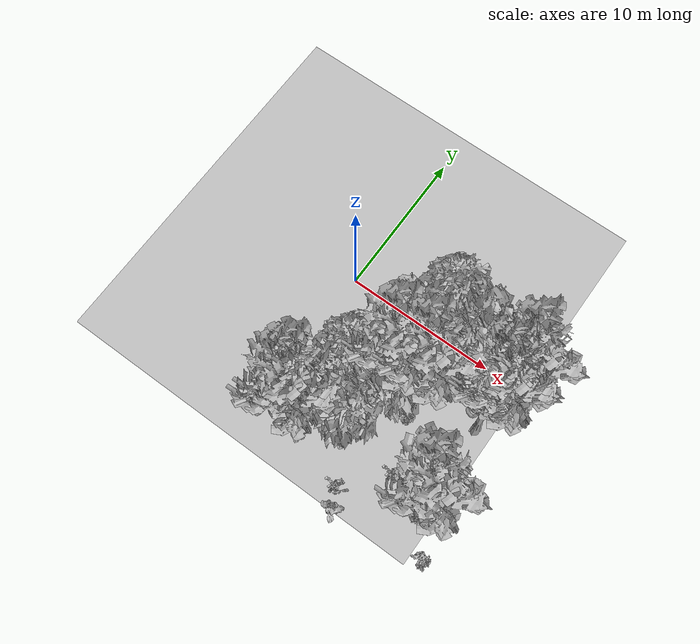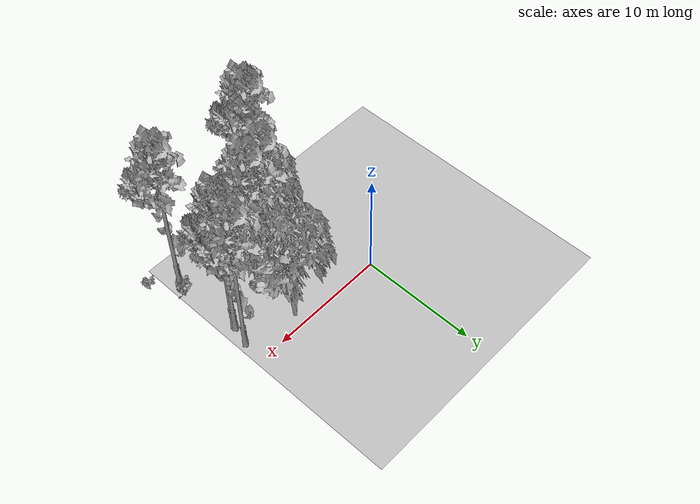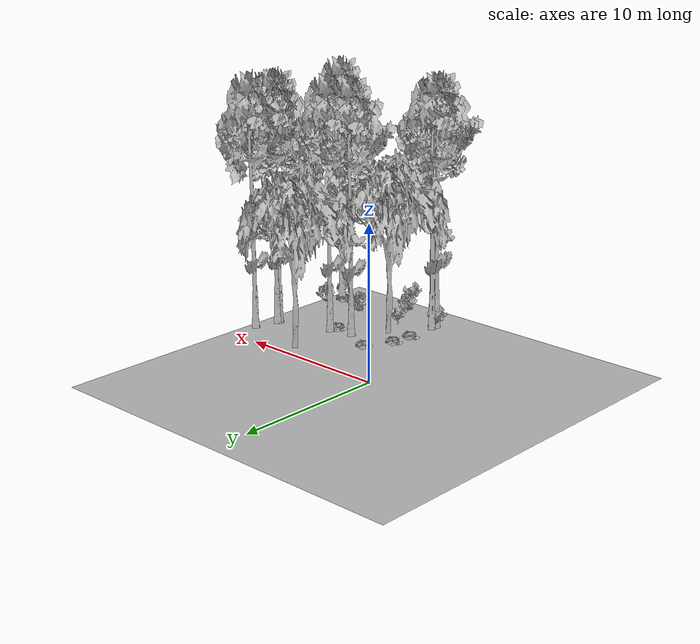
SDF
<sdf version="1.7">
 <world name="default">
  <model name="ground_plane">
   <static>1</static>
   <link name="link">
    <collision name="collision">
     <pose>-50 0 0 0 -0 0</pose>
     <geometry><plane><normal>0 0 1</normal><size>80 80</size></plane></geometry>
     <surface><contact><ode><min_depth>0.01</min_depth><max_vel>0</max_vel></ode></contact></surface>
    </collision>
    <visual name="grass">
     <cast_shadows>0</cast_shadows>
     <geometry>
      <mesh>
       <scale>0.46714285714285714 0.46714285714285714 0.1</scale>
       <uri>file://grass_plane/meshes/grass_plane.dae</uri>
      </mesh>
     </geometry>
    </visual>
   </link>
  </model>
  <model name="Tree 22">
   <static>1</static>
   <pose>7.396692323783576 -1.14076177592176 0 1.57079 -0 0</pose>
   <link name="link">
    <collision name="collision">
     <geometry><mesh><scale>3.5 5 3.5</scale><uri>model://tree_2/meshes/tree_2.obj</uri></mesh></geometry>
    </collision>
    <visual name="visual">
     <geometry><mesh><scale>3.5 5 3.5</scale><uri>model://tree_2/meshes/tree_2.obj</uri></mesh></geometry>
    </visual>
   </link>
  </model>
  <model name="Tree 55">
   <static>1</static>
   <pose>7.921232227271666 -4.774184534797989 0 1.57079 -0 0</pose>
   <link name="link">
    <collision name="collision">
     <geometry><mesh><scale>3.5 5 3.5</scale><uri>model://tree_9/meshes/tree_9.obj</uri></mesh></geometry>
    </collision>
    <visual name="visual">
     <geometry><mesh><scale>3.5 5 3.5</scale><uri>model://tree_9/meshes/tree_9.obj</uri></mesh></geometry>
    </visual>
   </link>
  </model>
  <model name="Tree 94">
   <static>1</static>
   <pose>11.587551721270643 -3.4730478400885687 0 1.57079 -0 0</pose>
   <link name="link">
    <collision name="collision">
     <geometry><mesh><scale>3.5 5 3.5</scale><uri>model://tree_9/meshes/tree_9.obj</uri></mesh></geometry>
    </collision>
    <visual name="visual">
     <geometry><mesh><scale>3.5 5 3.5</scale><uri>model://tree_9/meshes/tree_9.obj</uri></mesh></geometry>
    </visual>
   </link>
  </model>
  <model name="Tree 128">
   <static>1</static>
   <pose>3.24893320404491 -9.631113936457627 0 1.57079 -0 0</pose>
   <link name="link">
    <collision name="collision">
     <geometry><mesh><scale>3.5 5 3.5</scale><uri>model://tree_9/meshes/tree_9.obj</uri></mesh></geometry>
    </collision>
    <visual name="visual">
     <geometry><mesh><scale>3.5 5 3.5</scale><uri>model://tree_9/meshes/tree_9.obj</uri></mesh></geometry>
    </visual>
   </link>
  </model>
  <model name="Tree 214">
   <static>1</static>
   <pose>11.576881301949456 -3.6956774337105642 0 1.57079 -0 0</pose>
   <link name="link">
    <collision name="collision">
     <geometry><mesh><scale>3.5 5 3.5</scale><uri>model://tree_9/meshes/tree_9.obj</uri></mesh></geometry>
    </collision>
    <visual name="visual">
     <geometry><mesh><scale>3.5 5 3.5</scale><uri>model://tree_9/meshes/tree_9.obj</uri></mesh></geometry>
    </visual>
   </link>
  </model>
  <model name="Tree 299">
   <static>1</static>
   <pose>12.030896970484775 -1.88815713647719 0 1.57079 -0 0</pose>
   <link name="link">
    <collision name="collision">
     <geometry><mesh><scale>3.5 5 3.5</scale><uri>model://tree_9/meshes/tree_9.obj</uri></mesh></geometry>
    </collision>
    <visual name="visual">
     <geometry><mesh><scale>3.5 5 3.5</scale><uri>model://tree_9/meshes/tree_9.obj</uri></mesh></geometry>
    </visual>
   </link>
  </model>
  <model name="Tree 392">
   <static>1</static>
   <pose>6.303439835102743 -5.096116143590905 0 1.57079 -0 0</pose>
   <link name="link">
    <collision name="collision">
     <geometry><mesh><scale>3.5 5 3.5</scale><uri>model://tree_9/meshes/tree_9.obj</uri></mesh></geometry>
    </collision>
    <visual name="visual">
     <geometry><mesh><scale>3.5 5 3.5</scale><uri>model://tree_9/meshes/tree_9.obj</uri></mesh></geometry>
    </visual>
   </link>
  </model>
  <model name="Tree 448">
   <static>1</static>
   <pose>4.790285459682856 -7.195819845424552 0 1.57079 -0 0</pose>
   <link name="link">
    <collision name="collision">
     <geometry><mesh><scale>3.5 5 3.5</scale><uri>model://tree_2/meshes/tree_2.obj</uri></mesh></geometry>
    </collision>
    <visual name="visual">
     <geometry><mesh><scale>3.5 5 3.5</scale><uri>model://tree_2/meshes/tree_2.obj</uri></mesh></geometry>
    </visual>
   </link>
  </model>
  <model name="Tree 497">
   <static>1</static>
   <pose>3.232715580797418 -10.095657007865782 0 1.57079 -0 0</pose>
   <link name="link">
    <collision name="collision">
     <geometry><mesh><scale>3.5 5 3.5</scale><uri>model://tree_9/meshes/tree_9.obj</uri></mesh></geometry>
    </collision>
    <visual name="visual">
     <geometry><mesh><scale>3.5 5 3.5</scale><uri>model://tree_9/meshes/tree_9.obj</uri></mesh></geometry>
    </visual>
   </link>
  </model>
  <model name="Tree 602">
   <static>1</static>
   <pose>11.683178080078093 -9.827052397440674 0 1.57079 -0 0</pose>
   <link name="link">
    <collision name="collision">
     <geometry><mesh><scale>3.5 5 3.5</scale><uri>model://tree_9/meshes/tree_9.obj</uri></mesh></geometry>
    </collision>
    <visual name="visual">
     <geometry><mesh><scale>3.5 5 3.5</scale><uri>model://tree_9/meshes/tree_9.obj</uri></mesh></geometry>
    </visual>
   </link>
  </model>
  <model name="Bush 103">
   <static>1</static>
   <pose>11.419238575856191 -9.798875302215066 0 1.57079 -0 0</pose>
   <link name="link">
    <collision name="collision">
     <geometry><mesh><scale>2 2 2</scale><uri>model://bush_2/meshes/bush_2.obj</uri></mesh></geometry>
     <surface><contact><collide_without_contact>false</collide_without_contact></contact></surface>
    </collision>
    <visual name="visual">
     <geometry><mesh><scale>2 2 2</scale><uri>model://bush_2/meshes/bush_2.obj</uri></mesh></geometry>
    </visual>
   </link>
  </model>
  <model name="Bush 171">
   <static>1</static>
   <pose>3.140230083299741 -7.417957520131715 0 1.57079 -0 0</pose>
   <link name="link">
    <collision name="collision">
     <geometry><mesh><scale>2 2 2</scale><uri>model://bush_2/meshes/bush_2.obj</uri></mesh></geometry>
     <surface><contact><collide_without_contact>false</collide_without_contact></contact></surface>
    </collision>
    <visual name="visual">
     <geometry><mesh><scale>2 2 2</scale><uri>model://bush_2/meshes/bush_2.obj</uri></mesh></geometry>
    </visual>
   </link>
  </model>
  <model name="Bush 232">
   <static>1</static>
   <pose>3.3207203685036006 -5.964575657245852 0 1.57079 -0 0</pose>
   <link name="link">
    <collision name="collision">
     <geometry><mesh><scale>2 2 2</scale><uri>model://bush_2/meshes/bush_2.obj</uri></mesh></geometry>
     <surface><contact><collide_without_contact>false</collide_without_contact></contact></surface>
    </collision>
    <visual name="visual">
     <geometry><mesh><scale>2 2 2</scale><uri>model://bush_2/meshes/bush_2.obj</uri></mesh></geometry>
    </visual>
   </link>
  </model>
  <model name="Bush 279">
   <static>1</static>
   <pose>6.807112205948037 -11.45967829390095 0 1.57079 -0 0</pose>
   <link name="link">
    <collision name="collision">
     <geometry><mesh><scale>2 2 2</scale><uri>model://bush_4/meshes/bush_4.obj</uri></mesh></geometry>
     <surface><contact><collide_without_contact>false</collide_without_contact></contact></surface>
    </collision>
    <visual name="visual">
     <geometry><mesh><scale>2 2 2</scale><uri>model://bush_4/meshes/bush_4.obj</uri></mesh></geometry>
    </visual>
   </link>
  </model>
  <model name="Bush 309">
   <static>1</static>
   <pose>3.151438964449717 -10.02122264550038 0 1.57079 -0 0</pose>
   <link name="link">
    <collision name="collision">
     <geometry><mesh><scale>2 2 2</scale><uri>model://bush_0/meshes/bush_0.obj</uri></mesh></geometry>
     <surface><contact><collide_without_contact>false</collide_without_contact></contact></surface>
    </collision>
    <visual name="visual">
     <geometry><mesh><scale>2 2 2</scale><uri>model://bush_0/meshes/bush_0.obj</uri></mesh></geometry>
    </visual>
   </link>
  </model>
  <model name="Bush 314">
   <static>1</static>
   <pose>4.263393533089854 -4.153984649520254 0 1.57079 -0 0</pose>
   <link name="link">
    <collision name="collision">
     <geometry><mesh><scale>2 2 2</scale><uri>model://bush_2/meshes/bush_2.obj</uri></mesh></geometry>
     <surface><contact><collide_without_contact>false</collide_without_contact></contact></surface>
    </collision>
    <visual name="visual">
     <geometry><mesh><scale>2 2 2</scale><uri>model://bush_2/meshes/bush_2.obj</uri></mesh></geometry>
    </visual>
   </link>
  </model>
  <model name="Bush 333">
   <static>1</static>
   <pose>9.144784790368227 -8.91648440472214 0 1.57079 -0 0</pose>
   <link name="link">
    <collision name="collision">
     <geometry><mesh><scale>2 2 2</scale><uri>model://bush_4/meshes/bush_4.obj</uri></mesh></geometry>
     <surface><contact><collide_without_contact>false</collide_without_contact></contact></surface>
    </collision>
    <visual name="visual">
     <geometry><mesh><scale>2 2 2</scale><uri>model://bush_4/meshes/bush_4.obj</uri></mesh></geometry>
    </visual>
   </link>
  </model>
  <model name="Bush 361">
   <static>1</static>
   <pose>7.704714539624099 -5.369772759281048 0 1.57079 -0 0</pose>
   <link name="link">
    <collision name="collision">
     <geometry><mesh><scale>2 2 2</scale><uri>model://bush_2/meshes/bush_2.obj</uri></mesh></geometry>
     <surface><contact><collide_without_contact>false</collide_without_contact></contact></surface>
    </collision>
    <visual name="visual">
     <geometry><mesh><scale>2 2 2</scale><uri>model://bush_2/meshes/bush_2.obj</uri></mesh></geometry>
    </visual>
   </link>
  </model>
  <model name="Bush 371">
   <static>1</static>
   <pose>11.521278460456017 -9.865642281663376 0 1.57079 -0 0</pose>
   <link name="link">
    <collision name="collision">
     <geometry><mesh><scale>2 2 2</scale><uri>model://bush_2/meshes/bush_2.obj</uri></mesh></geometry>
     <surface><contact><collide_without_contact>false</collide_without_contact></contact></surface>
    </collision>
    <visual name="visual">
     <geometry><mesh><scale>2 2 2</scale><uri>model://bush_2/meshes/bush_2.obj</uri></mesh></geometry>
    </visual>
   </link>
  </model>
  <model name="Bush 492">
   <static>1</static>
   <pose>12.142482222181705 -8.851089860205612 0 1.57079 -0 0</pose>
   <link name="link">
    <collision name="collision">
     <geometry><mesh><scale>2 2 2</scale><uri>model://bush_4/meshes/bush_4.obj</uri></mesh></geometry>
     <surface><contact><collide_without_contact>false</collide_without_contact></contact></surface>
    </collision>
    <visual name="visual">
     <geometry><mesh><scale>2 2 2</scale><uri>model://bush_4/meshes/bush_4.obj</uri></mesh></geometry>
    </visual>
   </link>
  </model>
  <model name="Bush 494">
   <static>1</static>
   <pose>5.501993631164652 -8.790374748168517 0 1.57079 -0 0</pose>
   <link name="link">
    <collision name="collision">
     <geometry><mesh><scale>2 2 2</scale><uri>model://bush_0/meshes/bush_0.obj</uri></mesh></geometry>
     <surface><contact><collide_without_contact>false</collide_without_contact></contact></surface>
    </collision>
    <visual name="visual">
     <geometry><mesh><scale>2 2 2</scale><uri>model://bush_0/meshes/bush_0.obj</uri></mesh></geometry>
    </visual>
   </link>
  </model>
  <model name="Bush 541">
   <static>1</static>
   <pose>13.300547859491125 -11.820385805933178 0 1.57079 -0 0</pose>
   <link name="link">
    <collision name="collision">
     <geometry><mesh><scale>2 2 2</scale><uri>model://bush_2/meshes/bush_2.obj</uri></mesh></geometry>
     <surface><contact><collide_without_contact>false</collide_without_contact></contact></surface>
    </collision>
    <visual name="visual">
     <geometry><mesh><scale>2 2 2</scale><uri>model://bush_2/meshes/bush_2.obj</uri></mesh></geometry>
    </visual>
   </link>
  </model>
  <model name="Bush 618">
   <static>1</static>
   <pose>7.557992353843197 -12.57242160315539 0 1.57079 -0 0</pose>
   <link name="link">
    <collision name="collision">
     <geometry><mesh><scale>2 2 2</scale><uri>model://bush_0/meshes/bush_0.obj</uri></mesh></geometry>
     <surface><contact><collide_without_contact>false</collide_without_contact></contact></surface>
    </collision>
    <visual name="visual">
     <geometry><mesh><scale>2 2 2</scale><uri>model://bush_0/meshes/bush_0.obj</uri></mesh></geometry>
    </visual>
   </link>
  </model>
 </world>
</sdf>
